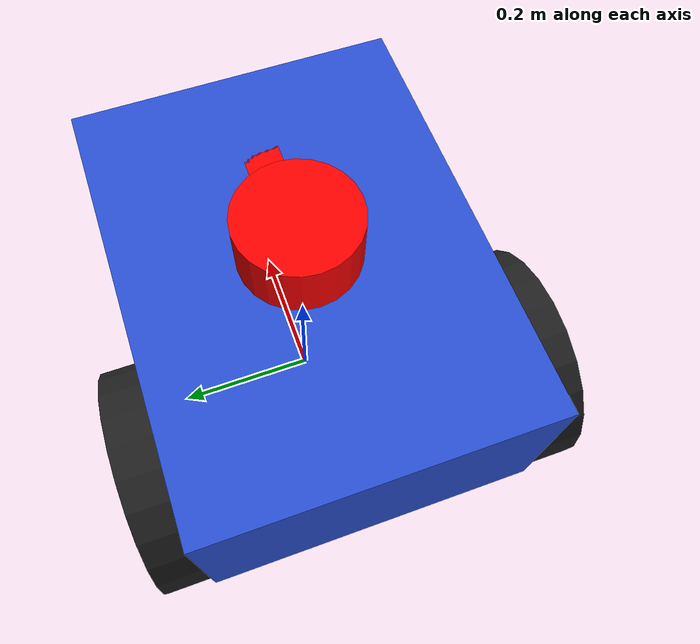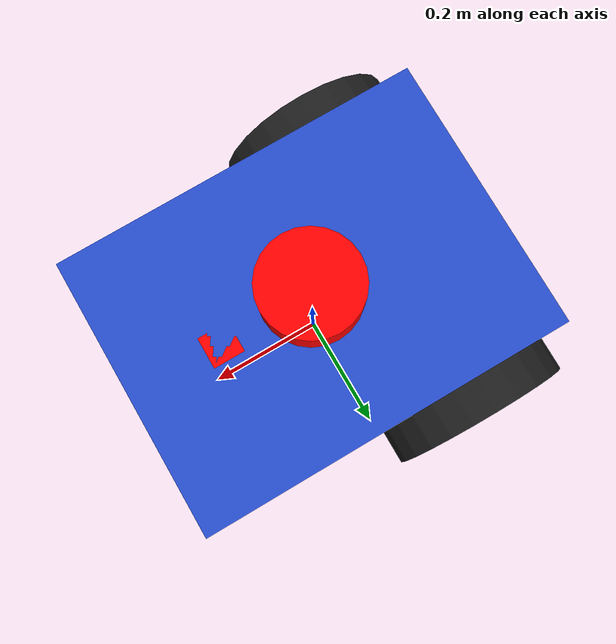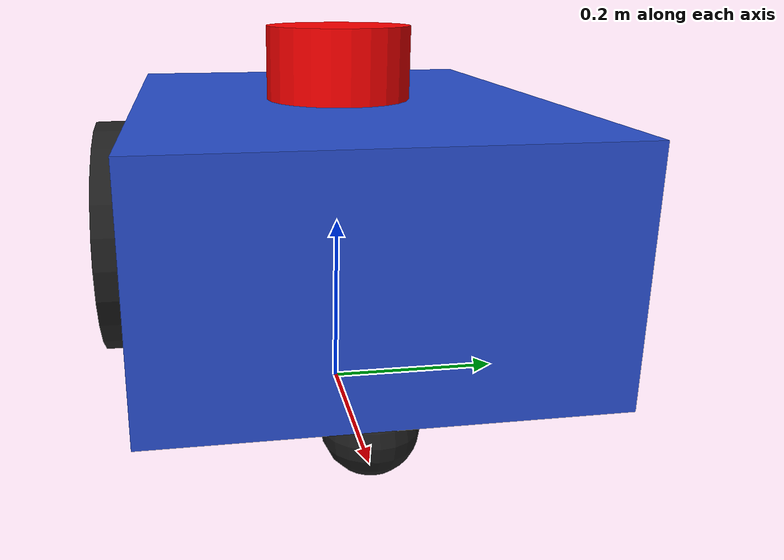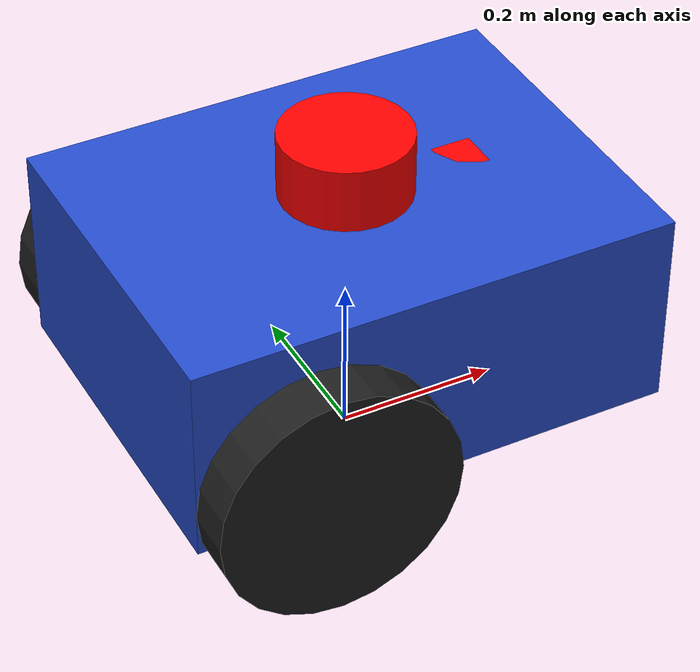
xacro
<?xml version="1.0"?>
<robot name="tortoisebot" xmlns:xacro="http://www.ros.org/wiki/xacro">

  <!-- Include materials -->
  <xacro:include filename="$(find tortoisebot_description)/urdf/materials.xacro"/>

  <!-- Properties -->
  <xacro:property name="base_width" value="0.45"/>
  <xacro:property name="base_length" value="0.60"/>
  <xacro:property name="base_height" value="0.25"/>
  <xacro:property name="wheel_radius" value="0.15"/>
  <xacro:property name="wheel_width" value="0.06"/>
  <xacro:property name="wheel_ygap" value="0.03"/>
  <xacro:property name="wheel_zoff" value="0.07"/>
  <xacro:property name="wheel_xoff" value="0.15"/>
  <xacro:property name="caster_xoff" value="0.20"/>
  <xacro:property name="caster_radius" value="0.05"/>

  <!-- Base Link -->
  <link name="base_link">
    <visual>
      <geometry>
        <box size="${base_length} ${base_width} ${base_height}"/>
      </geometry>
      <material name="blue"/>
    </visual>
    <collision>
      <geometry>
        <box size="${base_length} ${base_width} ${base_height}"/>
      </geometry>
    </collision>
    <inertial>
      <mass value="15"/>
      <inertia ixx="1.0" ixy="0.0" ixz="0.0" iyy="1.2" iyz="0.0" izz="1.2"/>
    </inertial>
  </link>

  <!-- Base Footprint -->
  <link name="base_footprint"/>
  <joint name="base_joint" type="fixed">
    <parent link="base_footprint"/>
    <child link="base_link"/>
    <origin xyz="0.0 0.0 ${wheel_radius + wheel_zoff}" rpy="0 0 0"/>
  </joint>

  <!-- Wheels Macro -->
  <xacro:macro name="wheel" params="prefix x_reflect y_reflect">
    <link name="${prefix}_link">
      <visual>
        <origin xyz="0 0 0" rpy="${pi/2} 0 0"/>
        <geometry>
          <cylinder radius="${wheel_radius}" length="${wheel_width}"/>
        </geometry>
        <material name="black"/>
      </visual>
      <collision>
        <origin xyz="0 0 0" rpy="${pi/2} 0 0"/>
        <geometry>
          <cylinder radius="${wheel_radius}" length="${wheel_width}"/>
        </geometry>
      </collision>
      <inertial>
        <mass value="3.5"/>
        <origin xyz="0 0 0" rpy="${pi/2} 0 0"/>
        <inertia ixx="0.025" ixy="0.0" ixz="0.0" iyy="0.025" iyz="0.0" izz="0.025"/>
      </inertial>
    </link>
    <joint name="${prefix}_joint" type="continuous">
      <parent link="base_link"/>
      <child link="${prefix}_link"/>
      <origin xyz="${x_reflect * wheel_xoff} ${y_reflect * (base_width/2 + wheel_ygap)} ${-wheel_zoff}" rpy="0 0 0"/>
      <axis xyz="0 1 0"/>
      <dynamics damping="0.1" friction="0.1"/>
    </joint>
  </xacro:macro>

  <xacro:wheel prefix="drivewhl_l" x_reflect="-1" y_reflect="1"/>
  <xacro:wheel prefix="drivewhl_r" x_reflect="-1" y_reflect="-1"/>

  <!-- Caster Wheel -->
  <link name="front_caster">
    <visual>
      <origin xyz="0 0 0" rpy="0 0 0"/>
      <geometry>
        <sphere radius="${caster_radius}"/>
      </geometry>
      <material name="black"/>
    </visual>

    <collision>
      <origin xyz="0 0 0" rpy="0 0 0"/>
      <geometry>
        <sphere radius="${caster_radius}"/>
      </geometry>
      <surface>
        <friction>
          <ode>
            <mu>0.0</mu>
            <mu2>0.0</mu2>
            <slip1>1.0</slip1>
            <slip2>1.0</slip2>
          </ode>
        </friction>
      </surface>
    </collision>

    <inertial>
      <mass value="0.5"/>
      <origin xyz="0 0 0" rpy="0 0 0"/>
      <inertia ixx="0.001" ixy="0.0" ixz="0.0" iyy="0.001" iyz="0.0" izz="0.001"/>
    </inertial>

  </link>
  <joint name="caster_joint" type="fixed">
    <parent link="base_link"/>
    <child link="front_caster"/>
    <origin xyz="${caster_xoff} 0.0 ${-base_height/2 - caster_radius}" rpy="0 0 0"/>
  </joint>

  <!-- Lidar Link -->
  <link name="lidar_link">
    <visual>
      <origin xyz="0 0 0" rpy="0 0 0"/>
      <geometry>
        <cylinder radius="0.08" length="0.08"/>
      </geometry>
      <material name="red"/>
    </visual>
    <collision>
      <origin xyz="0 0 0" rpy="0 0 0"/>
      <geometry>
        <cylinder radius="0.06" length="0.05"/>
      </geometry>
    </collision>
    <inertial>
      <mass value="0.2"/>
      <origin xyz="0 0 0" rpy="0 0 0"/>
      <inertia ixx="0.002" ixy="0.0" ixz="0.0" iyy="0.002" iyz="0.0" izz="0.002"/>
    </inertial>
  </link>
  <joint name="lidar_joint" type="fixed">
    <parent link="base_link"/>
    <child link="lidar_link"/>
    <origin xyz="0 0 ${base_height/2 + 0.04}" rpy="0 0 0"/>
  </joint>

  <!-- Depth Camera  -->
  <link name="camera_link">
    <collision>
      <origin xyz="0 0 0" rpy="0 0 0"/>
      <geometry>
        <box size="0.05 0.05 0.05"/>
      </geometry>
    </collision>
    <visual>
      <origin xyz="0 0 0" rpy="0 0 0"/>
      <geometry>
        <box size="0.05 0.05 0.05"/>
      </geometry>
      <material name="red">
        <color rgba="1 0 0 1"/>
      </material>
    </visual>
    <inertial>
      <mass value="0.1"/>
      <origin xyz="0 0 0" rpy="0 0 0"/>
      <inertia ixx="1e-6" ixy="0" ixz="0" iyy="1e-6" iyz="0" izz="1e-6" />
    </inertial>
  </link>
  <joint name="camera_joint" type="fixed">
    <axis xyz="0 1 0" />
    <origin xyz="0.15 0 0.1" rpy="0 0 0"/>
    <parent link="base_link"/>
    <child link="camera_link"/>
  </joint>

    <!-- Depth camera optical frame -->
  <link name="camera_depth_frame"/>
  <joint name="camera_depth_joint" type="fixed">
    <origin xyz="0 0 0" rpy="${-pi/2} 0 ${-pi/2}"/>
    <parent link="camera_link"/>
    <child link="camera_depth_frame"/>
  </joint>

  <!--  GAZEBO PROPERTIES -->
  <gazebo reference="base_link">
    <material>Gazebo/Blue</material>
  </gazebo>

  <gazebo reference="drivewhl_l_link">
    <material>Gazebo/Black</material>
  </gazebo>

  <gazebo reference="drivewhl_r_link">
    <material>Gazebo/Black</material>
  </gazebo>

  <gazebo reference="front_caster">
    <material>Gazebo/Black</material>
  </gazebo>

  <gazebo reference="lidar_link">
    <material>Gazebo/Red</material>
  </gazebo>

  <!-- GAZEBO PLUGINS  -->

  <!-- SENSORS SYSTEM -->
  <gazebo>
    <plugin filename="gz-sim-sensors-system" name="gz::sim::systems::Sensors">
      <render_engine>ogre2</render_engine>
    </plugin>
  </gazebo>

  <!-- Differential Drive Plugin -->
  <gazebo>
    <plugin filename="gz-sim-diff-drive-system" name="gz::sim::systems::DiffDrive">
      <!-- Wheel joints -->
      <left_joint>drivewhl_l_joint</left_joint>
      <right_joint>drivewhl_r_joint</right_joint>

      <!-- Kinematics -->
      <wheel_separation>0.51</wheel_separation>
      <wheel_radius>0.15</wheel_radius>

      <!-- Topics with model prefix -->
      <topic>/model/tortoisebot/cmd_vel</topic>
      <odom_topic>/model/tortoisebot/odometry</odom_topic>
      <tf_topic>/model/tortoisebot/tf</tf_topic>

      <!-- Frame IDs - FIXED to match URDF structure -->
      <frame_id>odom</frame_id>
      <child_frame_id>base_footprint</child_frame_id>

      <!-- Publishing settings -->
      <odom_publish_frequency>50</odom_publish_frequency>
      <publish_odom>true</publish_odom>
      <publish_odom_tf>true</publish_odom_tf>
      <publish_wheel_tf>false</publish_wheel_tf>

      <!-- Limits -->
      <max_linear_acceleration>1.0</max_linear_acceleration>
      <min_linear_acceleration>-1.0</min_linear_acceleration>
      <max_angular_acceleration>2.0</max_angular_acceleration>
      <min_angular_acceleration>-2.0</min_angular_acceleration>
      <max_linear_velocity>0.5</max_linear_velocity>
      <min_linear_velocity>-0.5</min_linear_velocity>
      <max_angular_velocity>1.0</max_angular_velocity>
      <min_angular_velocity>-1.0</min_angular_velocity>
    </plugin>
  </gazebo>

  <!-- Joint State Publisher Plugin -->
  <gazebo>
    <plugin filename="gz-sim-joint-state-publisher-system" name="gz::sim::systems::JointStatePublisher">
      <joint_name>drivewhl_l_joint</joint_name>
      <joint_name>drivewhl_r_joint</joint_name>
      <topic>joint_states</topic>
      <update_rate>50</update_rate>
    </plugin>
  </gazebo>

   <gazebo reference="lidar_link">
    <sensor name="lidar_sensor" type="gpu_lidar">
      <always_on>true</always_on>
      <update_rate>10</update_rate>
      <visualize>true</visualize>
      <topic>scan</topic>
      <frame>lidar_link</frame>
      <lidar>
        <scan>
          <horizontal>
            <samples>360</samples>
            <resolution>1</resolution>
            <min_angle>-3.14159</min_angle>
            <max_angle>3.14159</max_angle>
          </horizontal>
          <vertical>
            <samples>1</samples>
            <resolution>1</resolution>
            <min_angle>0</min_angle>
            <max_angle>0</max_angle>
          </vertical>
        </scan>
        <range>
          <min>0.1</min>
          <max>10.0</max>
          <resolution>0.01</resolution>
        </range>
        <noise>
          <type>gaussian</type>
          <mean>0.0</mean>
          <stddev>0.01</stddev>
        </noise>
      </lidar>
    </sensor>
  </gazebo>
  <!-- Depth Camera -->
   <gazebo reference="camera_link">
    <sensor name="depth_camera" type="depth_camera">
      <pose>0 0 0 0 0 0</pose>
      <visualize>true</visualize>
      <update_rate>10</update_rate>
      <always_on>true</always_on>
      <camera>
        <horizontal_fov>1.5708</horizontal_fov>
        <image>
          <width>640</width>
          <height>480</height>
          <format>R_FLOAT32</format>
        </image>
        <clip>
          <near>0.1</near>
          <far>10.0</far>
        </clip>
        <depth_camera>
          <output>depths</output>
        </depth_camera>
        <noise>
          <type>gaussian</type>
          <mean>0.0</mean>
          <stddev>0.007</stddev>
        </noise>
      </camera>
    </sensor>
  </gazebo>
</robot>
